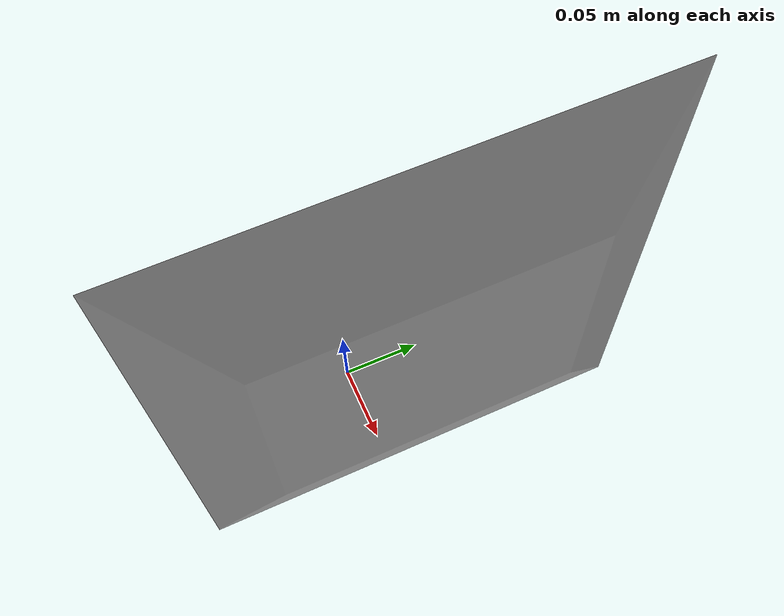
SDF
<?xml version="1.0" ?>
<sdf version="1.4">
  <model name="rice">
    <link name="rice_link">
      <inertial>
        <pose>-0.00 0.0 -0.00 0 0 0</pose>
        <mass>0.8</mass>
        <inertia>
          <ixx>0.01667</ixx>
	  <ixy>0.0</ixy>
	  <ixz>0.0</ixz>
	  <iyy>0.01667</iyy>
	  <iyz>0.0</iyz>
	  <izz>0.01667</izz>
	</inertia>
      </inertial>

      <visual name="rice_visual">
        <pose>0 0 0 0 -1.57079632679489 0 </pose>
        <material>
          <lighting>1</lighting>
          <script>
            <uri>model://rice/materials/scripts</uri>
            <uri>model://rice/materials/textures</uri>
            <name>Rice/Image</name>
          </script>
        </material>
        <geometry>
          <mesh>
            <uri>model://rice/meshes/rice.dae</uri>
            <scale>1.0 0.6 0.6</scale>
          </mesh>
        </geometry>
      </visual>

      <collision name="rice_collision">
        <pose>0.0 0.0 0.0 0.0 -1.57079632679489 0.0</pose>
        <geometry>
          <box>
            <size>0.055 0.07 0.10</size>
          </box>
        </geometry>
        <max_contacts>10</max_contacts>
        <surface>
          <contact>
            <ode/>
          </contact>
          <bounce/>
          <friction>
            <torsional>
              <ode/>
            </torsional>
            <ode>
              <mu>1.02</mu>
              <mu2>1.02</mu2>
            </ode>
          </friction>
        </surface>
      </collision>
      <self_collide>0</self_collide>
      <kinematic>0</kinematic>
    </link>
  </model>
</sdf>
